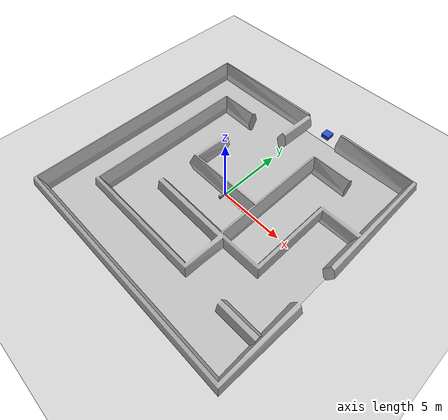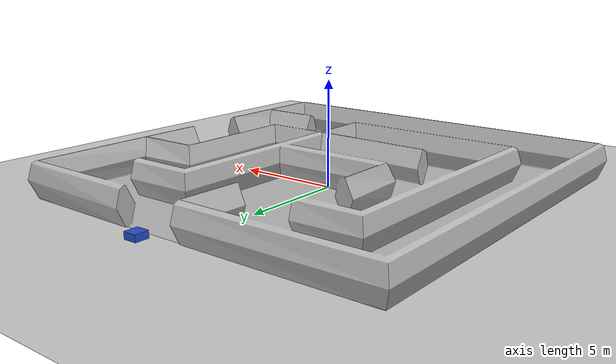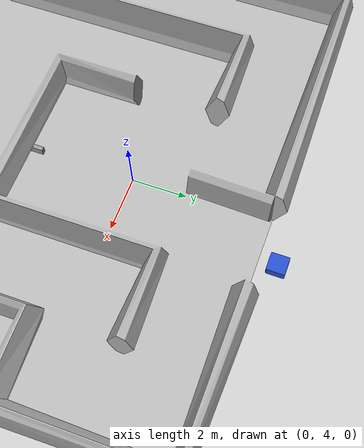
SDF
<?xml version="1.0" ?>
<sdf version="1.5">
  <world name="default">
    <include>
      <uri>model://sun</uri>
    </include>
    <include>
      <uri>model://ground_plane</uri>
    </include>

    <include>
      <uri>model://maze</uri>
      <pose>1.5 9 0.0001 0 0 0</pose>
    </include>

    <include>
      <uri>model://obstacle</uri>
      <pose>0 0 0 0 0 0</pose>
    </include>

    <include>
      <uri>model://amr_car</uri>
      <pose>1.5 9.8 0.001 0 0 -1.570796</pose>
    </include>

    <gui fullscreen='0'>
      <camera name='user_camera'>
        <pose frame=''>14.904 15.373 21.3272 0 0.825798 -2.3438</pose>
        <view_controller>orbit</view_controller>
        <projection_type>perspective</projection_type>
      </camera>
    </gui>
   </world>
</sdf>

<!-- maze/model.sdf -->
<sdf version="1.5">
  <model name="maze">
    <static>true</static>
    <link name="link">
      <collision name="collision">
        <geometry>
          <mesh>
            <uri>model://maze/meshes/Maze-scale.stl</uri>
            <scale>0.01 0.01 0.01</scale>
          </mesh>
        </geometry>
      </collision>
      <visual name="visual">
        <geometry>
          <mesh>
            <uri>model://maze/meshes/Maze-scale.stl</uri>
            <scale>0.01 0.01 0.01</scale>
          </mesh>
        </geometry>
        <material>
        </material>
      </visual>
    </link>
  </model>
</sdf>

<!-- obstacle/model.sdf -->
<sdf version="1.5">
  <model name='box_1'>
    <static>1</static>
    <pose frame=''>-8.79525 6.55756 0.26942 -1e-06 -2e-06 -0.000211</pose>
    <link name='link'>
      <inertial>
        <mass>1</mass>
        <inertia>
          <ixx>0.166667</ixx>
          <ixy>0</ixy>
          <ixz>0</ixz>
          <iyy>0.166667</iyy>
          <iyz>0</iyz>
          <izz>0.166667</izz>
        </inertia>
      </inertial>
      <collision name='collision'>
        <geometry>
          <box>
            <size>0.154617 1.12556 0.538644</size>
          </box>
        </geometry>
        <max_contacts>10</max_contacts>
        <surface>
          <contact>
            <ode/>
          </contact>
          <bounce/>
          <friction>
            <torsional>
              <ode/>
            </torsional>
            <ode/>
          </friction>
        </surface>
      </collision>
      <visual name='visual'>
        <geometry>
          <box>
            <size>0.154617 1.12556 0.538644</size>
          </box>
        </geometry>
        <material>
          <script>
            <name>Gazebo/Grey</name>
            <uri>file://media/materials/scripts/gazebo.material</uri>
          </script>
        </material>
      </visual>
      <self_collide>0</self_collide>
      <kinematic>0</kinematic>
      <gravity>1</gravity>
    </link>
  </model>
  <model name='box_2'>
    <static>true</static>
    <pose frame=''>-8.67589 0.75435 0.26942 -1e-06 -2e-06 -0.000211</pose>
    <link name='link'>
      <inertial>
        <mass>1</mass>
        <inertia>
          <ixx>0.166667</ixx>
          <ixy>0</ixy>
          <ixz>0</ixz>
          <iyy>0.166667</iyy>
          <iyz>0</iyz>
          <izz>0.166667</izz>
        </inertia>
      </inertial>
      <collision name='collision'>
        <geometry>
          <box>
            <size>0.154617 1.12556 0.538644</size>
          </box>
        </geometry>
        <max_contacts>10</max_contacts>
        <surface>
          <contact>
            <ode/>
          </contact>
          <bounce/>
          <friction>
            <torsional>
              <ode/>
            </torsional>
            <ode/>
          </friction>
        </surface>
      </collision>
      <visual name='visual'>
        <geometry>
          <box>
            <size>0.154617 1.12556 0.538644</size>
          </box>
        </geometry>
        <material>
          <script>
            <name>Gazebo/Grey</name>
            <uri>file://media/materials/scripts/gazebo.material</uri>
          </script>
        </material>
      </visual>
      <self_collide>0</self_collide>
      <kinematic>0</kinematic>
      <gravity>1</gravity>
    </link>
  </model>
  <model name='box_3'>
    <static>true</static>
    <pose frame=''>-6.5101 -1.66586 0.271645 0 0.030369 0.002364</pose>
    <link name='link'>
      <inertial>
        <mass>1</mass>
        <inertia>
          <ixx>0.166667</ixx>
          <ixy>0</ixy>
          <ixz>0</ixz>
          <iyy>0.166667</iyy>
          <iyz>0</iyz>
          <izz>0.166667</izz>
        </inertia>
      </inertial>
      <collision name='collision'>
        <geometry>
          <box>
            <size>0.154617 1.12556 0.538644</size>
          </box>
        </geometry>
        <max_contacts>10</max_contacts>
        <surface>
          <contact>
            <ode/>
          </contact>
          <bounce/>
          <friction>
            <torsional>
              <ode/>
            </torsional>
            <ode/>
          </friction>
        </surface>
      </collision>
      <visual name='visual'>
        <geometry>
          <box>
            <size>0.154617 1.12556 0.538644</size>
          </box>
        </geometry>
        <material>
          <script>
            <name>Gazebo/Grey</name>
            <uri>file://media/materials/scripts/gazebo.material</uri>
          </script>
        </material>
      </visual>
      <self_collide>0</self_collide>
      <kinematic>0</kinematic>
      <gravity>1</gravity>
    </link>
  </model>
  <model name='box_4'>
    <static>true</static>
    <pose frame=''>-8.83332 -5.80146 0.26942 -0 -0 -0.000209</pose>
    <link name='link'>
      <inertial>
        <mass>1</mass>
        <inertia>
          <ixx>0.166667</ixx>
          <ixy>0</ixy>
          <ixz>0</ixz>
          <iyy>0.166667</iyy>
          <iyz>0</iyz>
          <izz>0.166667</izz>
        </inertia>
      </inertial>
      <collision name='collision'>
        <geometry>
          <box>
            <size>0.154617 1.12556 0.538644</size>
          </box>
        </geometry>
        <max_contacts>10</max_contacts>
        <surface>
          <contact>
            <ode/>
          </contact>
          <bounce/>
          <friction>
            <torsional>
              <ode/>
            </torsional>
            <ode/>
          </friction>
        </surface>
      </collision>
      <visual name='visual'>
        <geometry>
          <box>
            <size>0.154617 1.12556 0.538644</size>
          </box>
        </geometry>
        <material>
          <script>
            <name>Gazebo/Grey</name>
            <uri>file://media/materials/scripts/gazebo.material</uri>
          </script>
        </material>
      </visual>
      <self_collide>0</self_collide>
      <kinematic>0</kinematic>
      <gravity>1</gravity>
    </link>
  </model>

  <model name='box_6'>
    <static>1</static>
    <pose frame=''>1.16997 -8.74604 0.269425 -0 -0 -1.60013</pose>
    <link name='link'>
      <inertial>
        <mass>1</mass>
        <inertia>
          <ixx>0.166667</ixx>
          <ixy>0</ixy>
          <ixz>0</ixz>
          <iyy>0.166667</iyy>
          <iyz>0</iyz>
          <izz>0.166667</izz>
        </inertia>
      </inertial>
      <collision name='collision'>
        <geometry>
          <box>
            <size>0.154617 1.12556 0.538644</size>
          </box>
        </geometry>
        <max_contacts>10</max_contacts>
        <surface>
          <contact>
            <ode/>
          </contact>
          <bounce/>
          <friction>
            <torsional>
              <ode/>
            </torsional>
            <ode/>
          </friction>
        </surface>
      </collision>
      <visual name='visual'>
        <geometry>
          <box>
            <size>0.154617 1.12556 0.538644</size>
          </box>
        </geometry>
        <material>
          <script>
            <name>Gazebo/Grey</name>
            <uri>file://media/materials/scripts/gazebo.material</uri>
          </script>
        </material>
      </visual>
      <self_collide>0</self_collide>
      <kinematic>0</kinematic>
      <gravity>1</gravity>
    </link>
  </model>
  <model name='box_7'>
    <static>true</static>
    <pose frame=''>-0.89334 -6.52649 0.269425 -0 -0 -1.60013</pose>
    <link name='link'>
      <inertial>
        <mass>1</mass>
        <inertia>
          <ixx>0.166667</ixx>
          <ixy>0</ixy>
          <ixz>0</ixz>
          <iyy>0.166667</iyy>
          <iyz>0</iyz>
          <izz>0.166667</izz>
        </inertia>
      </inertial>
      <collision name='collision'>
        <geometry>
          <box>
            <size>0.154617 1.12556 0.538644</size>
          </box>
        </geometry>
        <max_contacts>10</max_contacts>
        <surface>
          <contact>
            <ode/>
          </contact>
          <bounce/>
          <friction>
            <torsional>
              <ode/>
            </torsional>
            <ode/>
          </friction>
        </surface>
      </collision>
      <visual name='visual'>
        <geometry>
          <box>
            <size>0.154617 1.12556 0.538644</size>
          </box>
        </geometry>
        <material>
          <script>
            <name>Gazebo/Grey</name>
            <uri>file://media/materials/scripts/gazebo.material</uri>
          </script>
        </material>
      </visual>
      <self_collide>0</self_collide>
      <kinematic>0</kinematic>
      <gravity>1</gravity>
    </link>
  </model>
</sdf>

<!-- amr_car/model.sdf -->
<sdf version="1.5">
  <model name="amr_car">
    <static>false</static>

    <link name="chassis">
      <collision name="collision">
        <geometry>
          <mesh>
            <uri>model://amr_car/meshes/chassis.stl</uri>
            <scale>0.01 0.01 0.01</scale>
          </mesh>
        </geometry>
      </collision>
      <visual name="visual">
        <geometry>
          <mesh>
            <uri>model://amr_car/meshes/chassis.stl</uri>
            <scale>0.01 0.01 0.01</scale>
          </mesh>
        </geometry>
        <material>
          <script>
            <uri>file://media/materials/scripts/gazebo.material</uri>
            <name>Gazebo/Blue</name>
          </script>
        </material>
      </visual>
      <inertial>
        <mass>100</mass>
      </inertial>
    </link>

    <!-- wheel -->
    <link name="wheel_left">
      <collision name="collision">
        <geometry>
          <mesh>
            <uri>model://amr_car/meshes/wheel_left.stl</uri>
            <scale>0.01 0.01 0.01</scale>
          </mesh>
        </geometry>
        <surface>
          <friction>
            <ode>
              <mu>0.99</mu>
              <mu2>0.9</mu2>
            </ode>
          </friction>
        </surface>
      </collision>
      <visual name="visual">
        <geometry>
          <mesh>
            <uri>model://amr_car/meshes/wheel_left.stl</uri>
            <scale>0.01 0.01 0.01</scale>
          </mesh>
        </geometry>
        <material>
          <script>
            <uri>file://media/materials/scripts/gazebo.material</uri>
            <name>Gazebo/Black</name>
          </script>
        </material>
      </visual>
    </link>
    <link name="wheel_right">
      <collision name="collision">
        <geometry>
          <mesh>
            <uri>model://amr_car/meshes/wheel_right.stl</uri>
            <scale>0.01 0.01 0.01</scale>
          </mesh>
        </geometry>
        <surface>
          <friction>
            <ode>
              <mu>0.99</mu>
              <mu2>0.9</mu2>
            </ode>
          </friction>
        </surface>
      </collision>
      <visual name="visual">
        <geometry>
          <mesh>
            <uri>model://amr_car/meshes/wheel_right.stl</uri>
            <scale>0.01 0.01 0.01</scale>
          </mesh>
        </geometry>
        <material>
          <script>
            <uri>file://media/materials/scripts/gazebo.material</uri>
            <name>Gazebo/Black</name>
          </script>
        </material>
      </visual>
    </link>
    <joint type="revolute" name="wheel_left_hinge">
      <pose>0 0.275 0.075 0 0 0</pose>
      <child>wheel_left</child>
      <parent>chassis</parent>
      <axis>
        <xyz>0 1 0</xyz>
      </axis>
    </joint>
    <joint type="revolute" name="wheel_right_hinge">
      <pose>0 -0.275 0.075 0 0 0</pose>
      <child>wheel_right</child>
      <parent>chassis</parent>
      <axis>
        <xyz>0 1 0</xyz>
      </axis>
    </joint>
    <plugin name="wheel_drive_controller" filename="libgazebo_ros_diff_drive.so">
      <odometrySource>world</odometrySource>
      <publishOdomTF>true</publishOdomTF>
      <publishWheelTF>false</publishWheelTF>
      <publishTf>true</publishTf>
      <publishWheelJointState>true</publishWheelJointState>
      <legacyMode>false</legacyMode>

      <wheelAcceleration>1</wheelAcceleration>
      <wheelTorque>10</wheelTorque>
      <rosDebugLevel>na</rosDebugLevel>

      <alwaysOn>true</alwaysOn>
      <updateRate>30</updateRate>
      <leftJoint>wheel_left_hinge</leftJoint>
      <rightJoint>wheel_right_hinge</rightJoint>
      <wheelSeparation>0.55</wheelSeparation>
      <wheelDiameter>0.16</wheelDiameter>
      <torque>20</torque>
      <commandTopic>cmd_vel</commandTopic>
      <odometryTopic>odom</odometryTopic>
      <odometryFrame>odom</odometryFrame>
      <robotBaseFrame>base_footprint</robotBaseFrame>
    </plugin>

    <!-- Lidar sick_tim551.stl-->
    <link name="sick_tim551">
      <collision name="collision">
        <geometry>
          <mesh>
            <uri>model://amr_car/meshes/sick_tim551.stl</uri>
            <scale>0.01 0.01 0.01</scale>
          </mesh>
        </geometry>
      </collision>
      <visual name="visual">
        <geometry>
          <mesh>
            <uri>model://amr_car/meshes/sick_tim551.stl</uri>
            <scale>0.01 0.01 0.01</scale>
          </mesh>
        </geometry>
        <material>
          <script>
            <uri>file://media/materials/scripts/gazebo.material</uri>
            <name>Gazebo/Gray</name>
          </script>
        </material>
      </visual>
      <sensor type="ray" name="LiDAR">
        <pose>0.29 0 0.27 0 0 0</pose>
        <ray>
          <scan>
            <horizontal>
              <samples>360</samples>
              <resolution>1</resolution>
              <min_angle>-1.5707963</min_angle>
              <max_angle>1.5707963</max_angle>

            </horizontal>
          </scan>
          <range>
            <min>0.1</min>
            <max>10</max>
            <resolution>0.01</resolution>
          </range>
        </ray>
        <plugin name="laser" filename="libgazebo_ros_laser.so">
          <gaussianNoise>0.9</gaussianNoise>
          <topicName>scan</topicName>
          <frameName>laser</frameName>
          <always_on>1</always_on>
          <update_rate>30</update_rate>
        </plugin>
        <visualize>true</visualize>
      </sensor>
    </link>
    <joint type="fixed" name="laser_joint">
      <child>sick_tim551</child>
      <parent>chassis</parent>
    </joint>

    <!-- Camera -->
    <link name="camera_front">
      <visual name="visual">
        <geometry>
          <mesh>
            <uri>model://amr_car/meshes/camera_front.stl</uri>
            <scale>0.01 0.01 0.01</scale>
          </mesh>
        </geometry>
        <material>
          <script>
            <uri>file://media/materials/scripts/gazebo.material</uri>
            <name>Gazebo/Black</name>
          </script>
        </material>
      </visual>
      <sensor type="camera" name="camera_front">
        <pose>0.33 0 0.13 0 0 0</pose>
        <update_rate>30.0</update_rate>
        <camera name="camera_front">
          <horizontal_fov>1.3962634</horizontal_fov>
          <image>
            <width>800</width>
            <height>600</height>
            <format>R8G8B8</format>
          </image>
          <clip>
            <near>0.02</near>
            <far>300</far>
          </clip>
          <noise>
            <type>gaussian</type>
            <!-- Noise is sampled independently per pixel on each frame.
                That pixel's noise value is added to each of its color
                channels, which at that point lie in the range [0,1]. -->
            <mean>0.0</mean>
            <stddev>0.007</stddev>
          </noise>
        </camera>
        <plugin name="camera_controller" filename="libgazebo_ros_camera.so">
          <alwaysOn>true</alwaysOn>
          <updateRate>0.0</updateRate>
          <cameraName>camera_front</cameraName>
          <imageTopicName>image_raw</imageTopicName>
          <cameraInfoTopicName>camera_front_info</cameraInfoTopicName>
          <frameName>camera_front</frameName>
          <hackBaseline>0.07</hackBaseline>
          <distortionK1>0.0</distortionK1>
          <distortionK2>0.0</distortionK2>
          <distortionK3>0.0</distortionK3>
          <distortionT1>0.0</distortionT1>
          <distortionT2>0.0</distortionT2>
        </plugin>
      </sensor>
    </link>
    <joint type="fixed" name="front_cam_joint">
      <child>camera_front</child>
      <parent>chassis</parent>
    </joint>

    <link name="camera_back">
      <collision name="collision">
        <geometry>
          <mesh>
            <uri>model://amr_car/meshes/camera_back.stl</uri>
            <scale>0.01 0.01 0.01</scale>
          </mesh>
        </geometry>
      </collision>
      <visual name="visual">
        <geometry>
          <mesh>
            <uri>model://amr_car/meshes/camera_back.stl</uri>
            <scale>0.01 0.01 0.01</scale>
          </mesh>
        </geometry>
        <material>
          <script>
            <uri>file://media/materials/scripts/gazebo.material</uri>
            <name>Gazebo/Black</name>
          </script>
        </material>
      </visual>
      <sensor type="camera" name="camera_back">
        <pose>-0.33 0 0.13 0 0 3.1416</pose>
        <update_rate>30.0</update_rate>
        <camera name="camera_back">
          <horizontal_fov>1.3962634</horizontal_fov>
          <image>
            <width>800</width>
            <height>600</height>
            <format>R8G8B8</format>
          </image>
          <clip>
            <near>0.02</near>
            <far>300</far>
          </clip>
          <noise>
            <type>gaussian</type>
            <!-- Noise is sampled independently per pixel on each frame.
                That pixel's noise value is added to each of its color
                channels, which at that point lie in the range [0,1]. -->
            <mean>0.0</mean>
            <stddev>0.007</stddev>
          </noise>
        </camera>
        <plugin name="camera_controller" filename="libgazebo_ros_camera.so">
          <alwaysOn>true</alwaysOn>
          <updateRate>0.0</updateRate>
          <cameraName>camera_back</cameraName>
          <imageTopicName>image_raw</imageTopicName>
          <cameraInfoTopicName>camera_back_info</cameraInfoTopicName>
          <frameName>camera_back</frameName>
          <hackBaseline>0.07</hackBaseline>
          <distortionK1>0.0</distortionK1>
          <distortionK2>0.0</distortionK2>
          <distortionK3>0.0</distortionK3>
          <distortionT1>0.0</distortionT1>
          <distortionT2>0.0</distortionT2>
        </plugin>
      </sensor>
    </link>
    <joint type="fixed" name="camera_back_joint">
      <child>camera_back</child>
      <parent>chassis</parent>
    </joint>

    <!-- caster -->
    <link name="caster_front">
      <pose>0 0 0.0001 0 0 0 </pose>
      <collision name="collision">
        <geometry>
          <mesh>
            <uri>model://amr_car/meshes/caster_front.stl</uri>
            <scale>0.01 0.01 0.01</scale>
          </mesh>
        </geometry>
        <surface>
          <friction>
            <ode>
              <mu>0.1</mu>
              <mu2>0.1</mu2>
            </ode>
          </friction>
        </surface>
      </collision>
      <visual name="visual">
        <geometry>
          <mesh>
            <uri>model://amr_car/meshes/caster_front.stl</uri>
            <scale>0.01 0.01 0.01</scale>
          </mesh>
        </geometry>
        <material>
          <script>
            <uri>file://media/materials/scripts/gazebo.material</uri>
            <name>Gazebo/Gray</name>
          </script>
        </material>
      </visual>
    </link>
    <link name="caster_back">
      <pose>0 0 0.0001 0 0 0 </pose>
      <collision name="collision">
        <geometry>
          <mesh>
            <uri>model://amr_car/meshes/caster_back.stl</uri>
            <scale>0.01 0.01 0.01</scale>
          </mesh>
        </geometry>
        <surface>
          <friction>
            <ode>
              <mu>0.1</mu>
              <mu2>0.1</mu2>
            </ode>
          </friction>
        </surface>
      </collision>
      <visual name="visual">
        <geometry>
          <mesh>
            <uri>model://amr_car/meshes/caster_back.stl</uri>
            <scale>0.01 0.01 0.01</scale>
          </mesh>
        </geometry>
        <material>
          <script>
            <uri>file://media/materials/scripts/gazebo.material</uri>
            <name>Gazebo/Gray</name>
          </script>
        </material>
      </visual>
    </link>
    <joint type="fixed" name="caster_front_joint">
      <parent>chassis</parent>
      <child>caster_front</child>
    </joint>

    <joint type="fixed" name="caster_back_joint">
      <parent>chassis</parent>
      <child>caster_back</child>
    </joint>
  </model>
</sdf>
